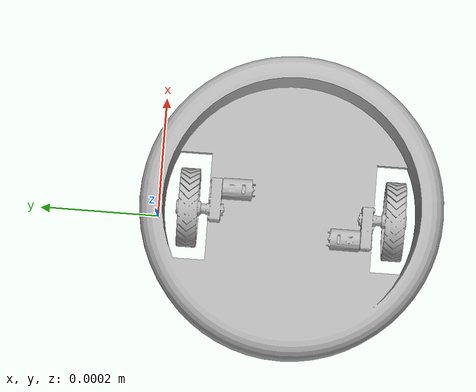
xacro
<?xml version="1.0" ?>
<robot name="trial_mob_rob" xmlns:xacro="http://www.ros.org/wiki/xacro">

<xacro:include filename="$(find trial_mob_rob_description)/urdf/materials.xacro" />
<xacro:include filename="$(find trial_mob_rob_description)/urdf/trial_mob_rob.trans" />
<xacro:include filename="$(find trial_mob_rob_description)/urdf/trial_mob_rob.gazebo" />

<link name="base_link">
  <inertial>
    <origin rpy="0 0 0" xyz="-0.0034871190351591563 0.0007044231053578187 0.08143236205127172"/>
    <mass value="13.649942665813256"/>
    <inertia ixx="0.33183" ixy="0.0" ixz="0.0" iyy="0.352816" iyz="-8.7e-05" izz="0.605353"/>
  </inertial>
  <visual>
    <origin rpy="0 0 0" xyz="0 0 0"/>
    <geometry>
      <mesh filename="package://trial_mob_rob_description/meshes/base_link.stl" scale="0.001 0.001 0.001"/>
    </geometry>
    <material name="silver"/>
  </visual>
  <collision>
    <origin rpy="0 0 0" xyz="0 0 0"/>
    <geometry>
      <mesh filename="package://trial_mob_rob_description/meshes/base_link.stl" scale="0.001 0.001 0.001"/>
    </geometry>
  </collision>
</link>

<link name="Left_Wheel_1">
  <inertial>
    <origin rpy="0 0 0" xyz="-1.1903516619355542e-07 0.02065162529831502 -1.3388605057951253e-07"/>
    <mass value="1.711543338342059"/>
    <inertia ixx="0.002492" ixy="0.0" ixz="0.0" iyy="0.004743" iyz="0.0" izz="0.002492"/>
  </inertial>
  <visual>
    <origin rpy="0 0 0" xyz="0.007737 0.192779 -0.065656"/>
    <geometry>
      <mesh filename="package://trial_mob_rob_description/meshes/Left_Wheel_1.stl" scale="0.001 0.001 0.001"/>
    </geometry>
    <material name="silver"/>
  </visual>
  <collision>
    <origin rpy="0 0 0" xyz="0.007737 0.192779 -0.065656"/>
    <geometry>
      <mesh filename="package://trial_mob_rob_description/meshes/Left_Wheel_1.stl" scale="0.001 0.001 0.001"/>
    </geometry>
  </collision>
</link>

<link name="Right_Wheel_1">
  <inertial>
    <origin rpy="0 0 0" xyz="-1.1903515317185365e-07 -0.02065162470168516 -1.3388605042685686e-07"/>
    <mass value="1.7115433383420542"/>
    <inertia ixx="0.002492" ixy="0.0" ixz="0.0" iyy="0.004743" iyz="0.0" izz="0.002492"/>
  </inertial>
  <visual>
    <origin rpy="0 0 0" xyz="0.009237 -0.192121 -0.065656"/>
    <geometry>
      <mesh filename="package://trial_mob_rob_description/meshes/Right_Wheel_1.stl" scale="0.001 0.001 0.001"/>
    </geometry>
    <material name="silver"/>
  </visual>
  <collision>
    <origin rpy="0 0 0" xyz="0.009237 -0.192121 -0.065656"/>
    <geometry>
      <mesh filename="package://trial_mob_rob_description/meshes/Right_Wheel_1.stl" scale="0.001 0.001 0.001"/>
    </geometry>
  </collision>
</link>

<link name="Castor_Wheel_1">
  <inertial>
    <origin rpy="0 0 0" xyz="0.20348688096484063 -0.22252099970168598 -0.004966793745548912"/>
    <mass value="0.013445107924163466"/>
    <inertia ixx="1e-06" ixy="0.0" ixz="0.0" iyy="1e-06" iyz="-0.0" izz="2e-06"/>
  </inertial>
  <visual>
    <origin rpy="0 0 0" xyz="0.026974 -0.223342 -0.011562"/>
    <geometry>
      <mesh filename="package://trial_mob_rob_description/meshes/Castor_Wheel_1.stl" scale="0.001 0.001 0.001"/>
    </geometry>
    <material name="silver"/>
  </visual>
  <collision>
    <origin rpy="0 0 0" xyz="0.026974 -0.223342 -0.011562"/>
    <geometry>
      <mesh filename="package://trial_mob_rob_description/meshes/Castor_Wheel_1.stl" scale="0.001 0.001 0.001"/>
    </geometry>
  </collision>
</link>

<link name="Left__Motor_1">
  <inertial>
    <origin rpy="0 0 0" xyz="0.005181000837964869 -0.2142433938432247 0.02409386087721002"/>
    <mass value="0.6244104719963113"/>
    <inertia ixx="0.000322" ixy="7.8e-05" ixz="-0.0" iyy="0.000346" iyz="0.0" izz="0.000476"/>
  </inertial>
  <visual>
    <origin rpy="0 0 0" xyz="0.026974 -0.083342 -0.041562"/>
    <geometry>
      <mesh filename="package://trial_mob_rob_description/meshes/Left__Motor_1.stl" scale="0.001 0.001 0.001"/>
    </geometry>
    <material name="silver"/>
  </visual>
  <collision>
    <origin rpy="0 0 0" xyz="0.026974 -0.083342 -0.041562"/>
    <geometry>
      <mesh filename="package://trial_mob_rob_description/meshes/Left__Motor_1.stl" scale="0.001 0.001 0.001"/>
    </geometry>
  </collision>
</link>

<link name="Right_Motor_1">
  <inertial>
    <origin rpy="0 0 0" xyz="0.03179276109817935 -0.231098605632112 0.024093860877209675"/>
    <mass value="0.6244104719963124"/>
    <inertia ixx="0.000322" ixy="7.8e-05" ixz="0.0" iyy="0.000346" iyz="-0.0" izz="0.000476"/>
  </inertial>
  <visual>
    <origin rpy="0 0 0" xyz="0.026974 -0.361342 -0.041562"/>
    <geometry>
      <mesh filename="package://trial_mob_rob_description/meshes/Right_Motor_1.stl" scale="0.001 0.001 0.001"/>
    </geometry>
    <material name="silver"/>
  </visual>
  <collision>
    <origin rpy="0 0 0" xyz="0.026974 -0.361342 -0.041562"/>
    <geometry>
      <mesh filename="package://trial_mob_rob_description/meshes/Right_Motor_1.stl" scale="0.001 0.001 0.001"/>
    </geometry>
  </collision>
</link>

<joint name="Left_Motor" type="continuous">
  <origin rpy="0 0 0" xyz="0.019237 -0.276121 0.024094"/>
  <parent link="Left__Motor_1"/>
  <child link="Left_Wheel_1"/>
  <axis xyz="0.0 -1.0 0.0"/>
</joint>

<joint name="Right_motor" type="continuous">
  <origin rpy="0 0 0" xyz="0.017737 -0.169221 0.024094"/>
  <parent link="Right_Motor_1"/>
  <child link="Right_Wheel_1"/>
  <axis xyz="0.0 1.0 0.0"/>
</joint>

<joint name="Rigid15" type="fixed">
  <origin rpy="0 0 0" xyz="-0.026974 0.223342 0.011562"/>
  <parent link="base_link"/>
  <child link="Castor_Wheel_1"/>
</joint>

<joint name="Rigid17" type="fixed">
  <origin rpy="0 0 0" xyz="-0.026974 0.083342 0.041562"/>
  <parent link="base_link"/>
  <child link="Left__Motor_1"/>
</joint>

<joint name="Rigid18" type="fixed">
  <origin rpy="0 0 0" xyz="-0.026974 0.361342 0.041562"/>
  <parent link="base_link"/>
  <child link="Right_Motor_1"/>
</joint>

</robot>

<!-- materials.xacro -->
<robot name="trial_mob_rob" xmlns:xacro="http://www.ros.org/wiki/xacro" >

<material name="silver">
  <color rgba="0.700 0.700 0.700 1.000"/>
</material>

</robot>

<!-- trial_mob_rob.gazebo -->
<robot name="trial_mob_rob" xmlns:xacro="http://www.ros.org/wiki/xacro" >

<xacro:property name="body_color" value="Gazebo/Silver" />

<gazebo>
  <plugin filename="libgazebo_ros_control.so" name="control"/>
</gazebo>
<gazebo reference="base_link">
  <material>${body_color}</material>
  <mu1>0.2</mu1>
  <mu2>0.2</mu2>
  <selfCollide>true</selfCollide>
  <gravity>true</gravity>
</gazebo>

<gazebo reference="Left_Wheel_1">
  <material>${body_color}</material>
  <mu1>0.2</mu1>
  <mu2>0.2</mu2>
  <selfCollide>true</selfCollide>
</gazebo>

<gazebo reference="Right_Wheel_1">
  <material>${body_color}</material>
  <mu1>0.2</mu1>
  <mu2>0.2</mu2>
  <selfCollide>true</selfCollide>
</gazebo>

<gazebo reference="Castor_Wheel_1">
  <material>${body_color}</material>
  <mu1>0.2</mu1>
  <mu2>0.2</mu2>
  <selfCollide>true</selfCollide>
</gazebo>

<gazebo reference="Left__Motor_1">
  <material>${body_color}</material>
  <mu1>0.2</mu1>
  <mu2>0.2</mu2>
  <selfCollide>true</selfCollide>
</gazebo>

<gazebo reference="Right_Motor_1">
  <material>${body_color}</material>
  <mu1>0.2</mu1>
  <mu2>0.2</mu2>
  <selfCollide>true</selfCollide>
</gazebo>

</robot>
